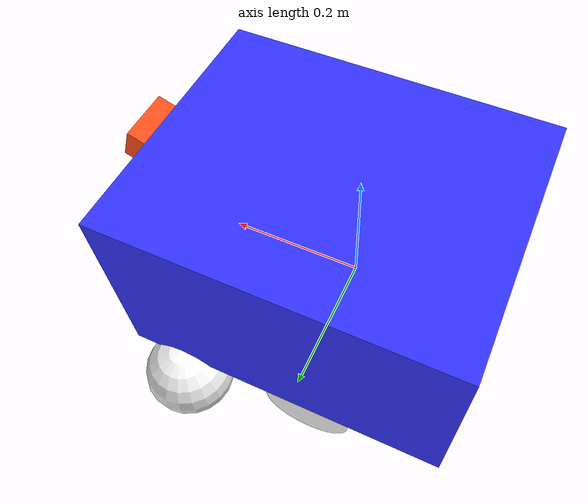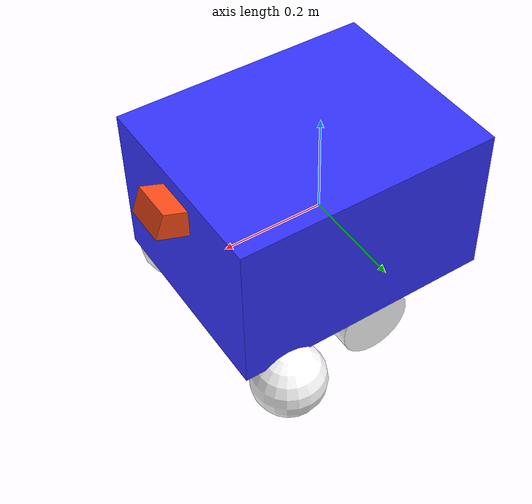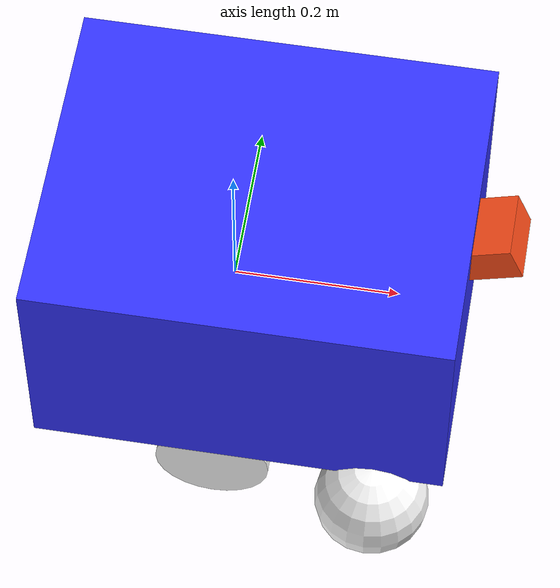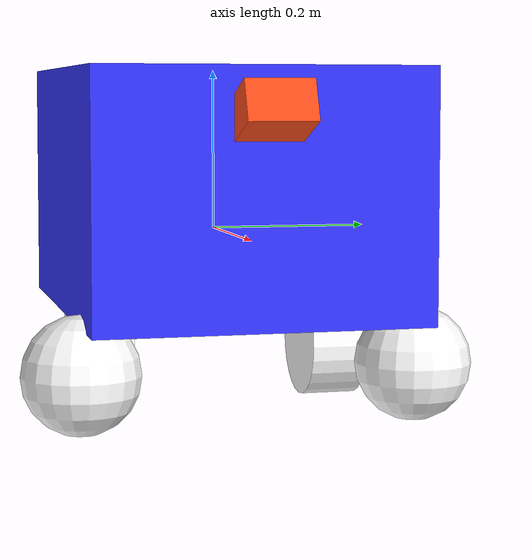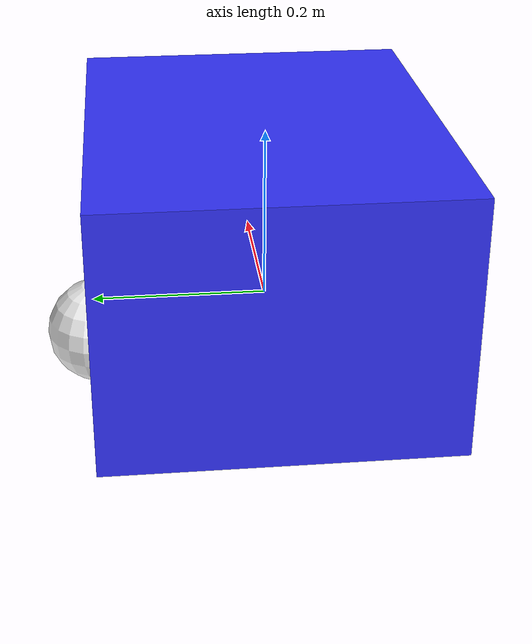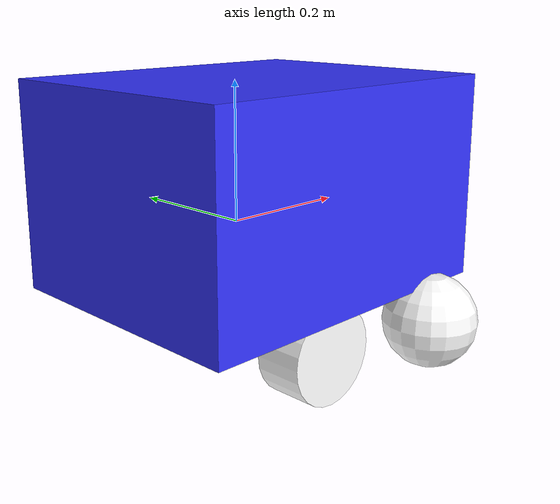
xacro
<?xml version="1.0"?>
<robot xmlns:xacro="http://www.ros.org/wiki/xacro"  name="robot">

    <xacro:include filename="robot_core.urdf.xacro" />

    <xacro:include filename="gazebo_control.xacro" />
    <xacro:include filename="camera.urdf.xacro" />

</robot>

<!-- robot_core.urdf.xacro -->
<robot xmlns:xacro="http://www.ros.org/wiki/xacro">

    <xacro:include filename="inertial.urdf.xacro"/>

    <material name="white">
        <color rgba="1 1 1 1" />
    </material>

    <material name="orange">
        <color rgba="1 0.3 0.1 1" />
    </material>

    <material name="blue">
        <color rgba="0.2 0.2 1 1" />
    </material>

    <material name="black">
        <color rgba="0 0 0 1" />
    </material>

<!--base link-->
    <link name="base_link">

    </link>
<!--BASE_FOOTPRINT LINK-->
    <joint name="base_footprint_joint" type="fixed">
        <parent link="base_link"/>
        <child link="base_footprint"/>
        <origin xyz="0 0 0" rpy="0 0 0"/>
    </joint>

    <link name="base_footprint">
    </link>

<!--chassis link-->

    <joint name="chassis_joint" type="fixed">
        <parent link="base_link"/>
        <child link="chassis"/>
        <origin xyz="-0.1 0 0"/>

    </joint>

    <link name="chassis">
        <visual>
            <origin xyz="0.135 0 0.052885"/>
            <geometry>
                <box size="0.5 0.4 0.3"/>
            </geometry>
            <material name="blue"/>
        </visual>
        <collision>
            <origin xyz="0.135 0 0.052885"/>
            <geometry>
                <box size="0.5 0.4 0.3"/>
            </geometry>
        </collision>

        <xacro:inertial_box mass="30" x="0.27" y="0.168" z="0.10577">
            <origin xyz="0.135 0 0.052885" rpy="0 0 0"/>

        </xacro:inertial_box>

    </link>
    <gazebo reference="chassis">
        <material>Gazebo/Red</material>
    </gazebo>

<!--Left wheel link-->

    <joint name="left_wheel_joint" type="continuous">
        <parent link="base_link"/>
        <child link="left_wheel"/>
        <origin xyz="0 0.15 -0.15" rpy="-${pi/2} 0 0"/>  <!-- we are rotating the whole bot 90 degrees wrt x axis..-->
        <axis xyz="0 0 1"/>
    </joint>

    <link name="left_wheel">
        <visual>
            <geometry>
                <cylinder radius="0.07" length="0.070"/>
            </geometry>
            <material name="white"/>
        </visual>
        <collision>
            <geometry>
                <sphere radius="0.07"/>
            </geometry>
        </collision>
        <xacro:inertial_cylinder mass="4" length="0.07" radius="0.07">
            <origin xyz = "0 0 0" rpy = "0 0 0 "/>
        </xacro:inertial_cylinder>
        </link>

        <gazebo reference="left_wheel">
            <material>Gazebo/White</material>
        </gazebo>

<!--Right wheel link-->

    <joint name="right_wheel_joint" type="continuous">
        <parent link="base_link"/>
        <child link="right_wheel"/>
        <origin xyz="0 -0.15 -0.15" rpy="${pi/2} 0 0"/>  <!-- we are rotating the whole bot 90 degrees wrt x axis..-->
        <axis xyz="0 0 -1"/>
    </joint>

    <link name="right_wheel">
        <visual>
            <geometry>
                <cylinder radius="0.07" length="0.070"/>
            </geometry>
            <material name="white"/>
        </visual>
        <collision>
            <geometry>
                <sphere radius="0.07"/>
            </geometry>
            <material name="white"/>
        </collision>
        <xacro:inertial_cylinder mass="4" length="0.07" radius="0.07">
            <origin xyz = "0 0 0" rpy = "0 0 0 "/>
        </xacro:inertial_cylinder>
    </link>

    <gazebo reference="right_wheel">
        <material>Gazebo/White</material>
    </gazebo>

    <!--Caster wheel_left -->
    <joint name="caster_wheel_left_joint" type="fixed">
        <parent link="chassis"/>
        <child link="caster_wheel_left"/>
        <origin xyz="0.3 0.2 -0.15"/>
    </joint>

    <link name="caster_wheel_left">
        <visual>
            <geometry>
                <sphere radius="0.07"/>
            </geometry>
            <material name="white"/>
        </visual>
        <collision>
            <geometry>
                <sphere radius="0.07"/>
            </geometry>
            <material name="white"/>
        </collision>
        <xacro:inertial_sphere mass="5" radius="0.07">
            <origin xyz="0 0 0" rpy="0 0 0"/>
        </xacro:inertial_sphere>
    </link>
    <gazebo reference="caster_wheel_left">
        <material>Gazebo/White</material>
        <mu1 value="0.01"/>
        <mu2 value="0.01"/>

    </gazebo>

       <!--Caster wheel right-->
       <joint name="caster_wheel_right_joint" type="fixed">
        <parent link="chassis"/>
        <child link="caster_wheel_right"/>
        <origin xyz="0.3 -0.2 -0.15"/>
    </joint>

    <link name="caster_wheel_right">
        <visual>
            <geometry>
                <sphere radius="0.07"/>
            </geometry>
            <material name="white"/>
        </visual>
        <collision>
            <geometry>
                <sphere radius="0.07"/>
            </geometry>
            <material name="white"/>
        </collision>
        <xacro:inertial_sphere mass="5" radius="0.07">
            <origin xyz="0 0 0" rpy="0 0 0"/>
        </xacro:inertial_sphere>
    </link>
    <gazebo reference="caster_wheel_right">
        <material>Gazebo/White</material>
        <mu1 value="0.01"/>
        <mu2 value="0.01"/>

    </gazebo>

</robot>

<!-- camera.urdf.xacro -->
<robot xmlns:xacro="http://www.ros.org/wiki/xacro" >

    <joint name="camera_joint" type="fixed">
        <parent link="chassis"/>
        <child link="camera_link"/>
        <origin xyz="0.4 0 0.15" rpy="0 ${pi/2.6} 0"/>
    </joint>

    <link name="camera_link">
        <visual>
            <geometry>
                <box size="0.05 0.08 0.08"/>
            </geometry>
            <material name="orange"/>
        </visual>
    </link>

    <joint name="camera_optical_joint" type="fixed">
        <parent link="camera_link"/>
        <child link="camera_link_optical"/>
        <origin xyz="0 0 0" rpy="${-pi/2} 0 ${-pi/2}"/>
    </joint>

    <link name="camera_link_optical"></link>

    <gazebo reference="camera_link">
        <material>Gazebo/Orange</material>

        <sensor name="camera" type="camera">
            <pose> 0 0 0 0 0 0 </pose>
            <visualize>true</visualize>
            <update_rate>10</update_rate>
            <camera>
                <horizontal_fov>1.089</horizontal_fov>
                <image>
                    <format>R8G8B8</format>
                    <width>640</width>
                    <height>480</height>
                </image>
                <clip>
                    <near>0.05</near>
                    <far>8.0</far>
                </clip>
            </camera>
            <plugin name="camera_controller" filename="libgazebo_ros_camera.so">
                <frame_name>camera_link_optical</frame_name>
            </plugin>
        </sensor>
    </gazebo>

</robot>
